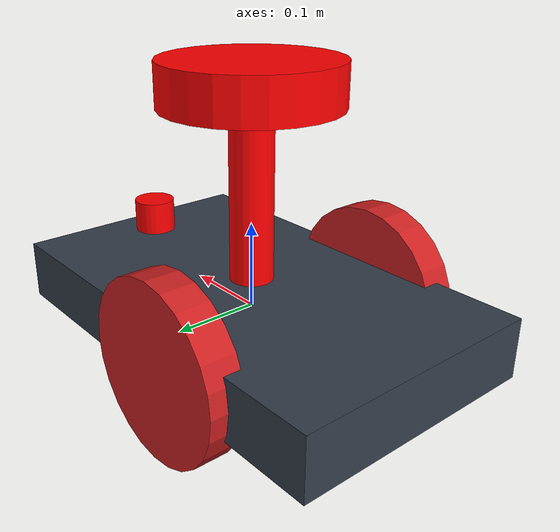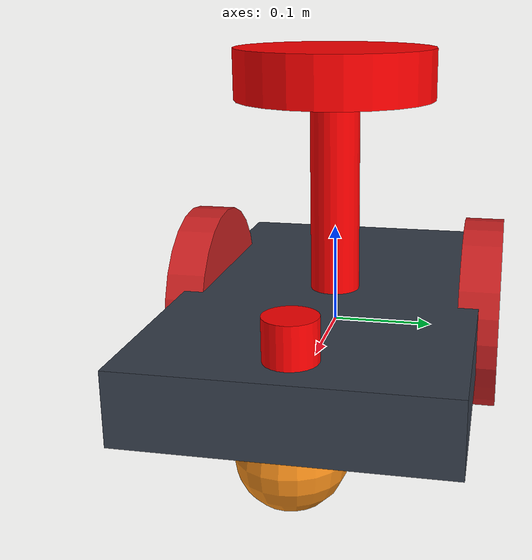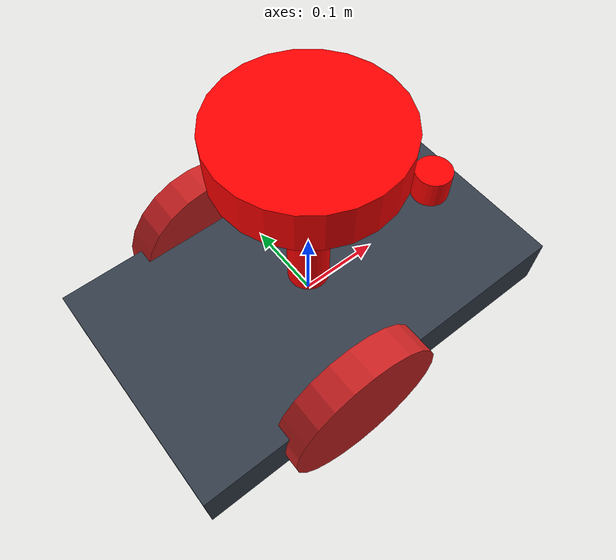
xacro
<?xml version="1.0"?>
<robot xmlns:xacro="http://www.ros.org/wiki/xacro" name="robot">
    <xacro:include filename="$(find assignment2_exprob_tm)/urdf/robot.gazebo"/>

    <xacro:property name="length_wheel" value="0.04" />
    <xacro:property name="radius_wheel" value="0.1" />

    <xacro:macro name="default_inertial" params="mass">
        <inertial>
            <mass value="${mass}" />
            <origin rpy="0 1.5707 1.5707" xyz="0 0 0"/>
            <inertia ixx="0.000526666666667" ixy="0" ixz="0" iyy="0.000526666666667" iyz="0" izz="0.001"/>
        </inertial>
    </xacro:macro>

    <xacro:macro name="wheel_geometry">
        <geometry>
            <cylinder length="${length_wheel}" radius="${radius_wheel}"/>
        </geometry>
    </xacro:macro>

    <material name="black">
        <color rgba="0.0 0.0 0.0 1.0"/>
    </material>
    <material name="blue">
        <color rgba="0.203125 0.23828125 0.28515625 1.0"/>
    </material>
    <material name="green">
        <color rgba="0.0 0.8 0.0 1.0"/>
    </material>
    <material name="grey">
        <color rgba="0.2 0.2 0.2 1.0"/>
    </material>
    <material name="orange">
        <color rgba="1.0 0.423529411765 0.0392156862745 1.0"/>
    </material>
    <material name="brown">
        <color rgba="0.870588235294 0.811764705882 0.764705882353 1.0"/>
    </material>
    <material name="red">
        <color rgba="0.80078125 0.12890625 0.1328125 1.0"/>
    </material>
    <material name="white">
        <color rgba="1.0 1.0 1.0 1.0"/>
    </material>

    <link name="link_chassis">
        <!-- pose and inertial -->
        <pose>0 0 0.0 0 0 0</pose>
        <inertial>
            <mass value="5"/>
            <origin rpy="0 0 0" xyz="0 0 0.0"/>
            <inertia ixx="0.0395416666667" ixy="0" ixz="0" iyy="0.106208333333" iyz="0" izz="0.106208333333"/>
        </inertial>
        <!-- body -->
        <collision name="collision_chassis">
            <geometry>
                <box size="0.5 0.3 0.07"/>
            </geometry>
        </collision>
        <visual>
            <origin rpy="0 0 0" xyz="0 0 0"/>
            <geometry>
                <box size="0.5 0.3 0.07"/>
            </geometry>
            <material name="blue"/>
        </visual>
        <!-- caster front -->
        <collision name="caster_front_collision">
            <origin rpy=" 0 0 0" xyz="0.35 0 -0.05"/>
            <geometry>
                <sphere radius="0.05"/>
            </geometry>
        </collision>
        <visual name="caster_front_visual">
            <origin rpy=" 0 0 0" xyz="0.2 0 -0.05"/>
            <geometry>
                <sphere radius="0.05"/>
            </geometry>
        </visual>
    </link>

    <link name="link_right_wheel">
        <xacro:default_inertial mass="0.2"/>
        <collision name="link_right_wheel_collision">
            <origin rpy="0 1.5707 1.5707" xyz="0 0 0"/>
            <xacro:wheel_geometry />
        </collision>
        <visual name="link_right_wheel_visual">
            <origin rpy="0 1.5707 1.5707" xyz="0 0 0"/>
            <xacro:wheel_geometry />
            <material name="red"/>
        </visual>
    </link>

    <joint name="joint_right_wheel" type="continuous">
        <origin rpy="0 0 0" xyz="-0.05 0.15 0"/>
        <parent link="link_chassis"/>
        <child link="link_right_wheel"/>
        <axis rpy="0 0 0" xyz="0 1 0"/>
        <limit effort="10000" velocity="1000"/>
        <joint_properties damping="1.0" friction="1.0"/>
    </joint>

    <joint name="joint_left_wheel" type="continuous">
        <parent link="link_chassis"/>
        <child link="link_left_wheel"/>
        <origin rpy="0 0 0" xyz="-0.05 -0.15 0"/>
        <axis rpy="0 0 0" xyz="0 1 0"/>
        <limit effort="10000" velocity="1000"/>
        <joint_properties damping="1.0" friction="1.0"/>
    </joint>

    <link name="link_left_wheel">
        <xacro:default_inertial mass="0.2"/>
        <collision>
            <origin rpy="0 1.5707 1.5707" xyz="0 0 0"/>
            <xacro:wheel_geometry/>
        </collision>
        <visual>
            <origin rpy="0 1.5707 1.5707" xyz="0 0 0"/>
            <xacro:wheel_geometry/>
            <material name="red"/>
        </visual>
    </link>

    <link name="camera_optical_link">
        <inertial>
            <mass value="0" />
            <origin xyz="0 0 0" rpy="0 0 0"/>
            <inertia ixx="0" ixy="0" ixz="0" iyy="0" iyz="0" izz="0" />
        </inertial>
    </link>

    <!--https://wiki.ros.org/urdf/XML/joint-->
    <joint name="camera_optical_joint" type="fixed">
        <origin xyz="0 0 0" rpy="-1.5708 0 -1.5708"/>
        <parent link="camera_link"/>
        <child link="camera_optical_link"/>
    </joint>

    <link name="camera_link">
        <collision>
            <origin xyz="0 0 0" rpy="0 0 0"/>
            <geometry>
                <cylinder length="0.05" radius="0.1"/>
            </geometry>
        </collision>
        <visual>
            <origin xyz="0 0 0.0" rpy="0 0 0"/>
            <geometry>
                <cylinder length="0.05" radius="0.1"/>
            </geometry>
            <material name="red">
                <color rgba="1 0 0 1"/>
            </material>
        </visual>
        <xacro:default_inertial mass="0.001"/>
    </link>

    <joint name="camera_connection_joint" type = "fixed">
        <origin xyz="0 0 0.125" rpy="0 0 0" />
        <parent link="camera_connection_link"/>
        <child link="camera_link" />
    </joint>

    <link name="camera_connection_link">
        <collision>
            <origin xyz="0 0 0" rpy="0 0 0"/>
            <geometry>
                <cylinder length="0.20" radius="0.025"/>
            </geometry>
        </collision>
        <visual>
            <origin xyz="0 0 0.0" rpy="0 0 0"/>
            <geometry>
                <cylinder length="0.20" radius="0.025"/>
            </geometry>
            <material name="red">
                <color rgba="1 0 0 1"/>
            </material>
        </visual>
        <xacro:default_inertial mass="0.02"/>
    </link>

    <joint name="camera_joint" type="continuous">
        <parent link="link_chassis"/>
        <child link="camera_connection_link"/>
        <axis xyz="0 0 1" />
        <origin xyz="0.0 0.0 0.13" rpy="0 0 0"/>
        <dynamics damping="0.1"/>
        <limit effort="10000" velocity="100" />
    </joint>

    <link name="lidar_link">
        <collision>
            <origin xyz="0 0 0" rpy="0 0 0"/>
            <geometry>
                <cylinder length="0.05" radius="0.025"/>
            </geometry>
        </collision>
        <visual>
            <origin xyz="0 0 0.0" rpy="0 0 0"/>
            <geometry>
                <cylinder length="0.05" radius="0.025"/>
            </geometry>
            <material name="red">
                <color rgba="1 0 0 1"/>
            </material>
        </visual>
        <xacro:default_inertial mass="0.01"/>
    </link>

    <joint name="lidar_joint" type="fixed">
        <parent link="link_chassis"/>
        <child link="lidar_link"/>
        <axis xyz="0 0 1" />
        <origin xyz="0.20 0.0 0.05" rpy="0 0 0"/>
    </joint>

    <link name="wheel_center_link">
    </link>

    <joint name="wheel_center_joint" type="fixed">
        <origin rpy="0 0 0" xyz="-0.05 0 0"/>
        <parent link="link_chassis"/>
        <child link="wheel_center_link"/>
        <axis rpy="0 0 0" xyz="0 1 0"/>
    </joint>

</robot>
